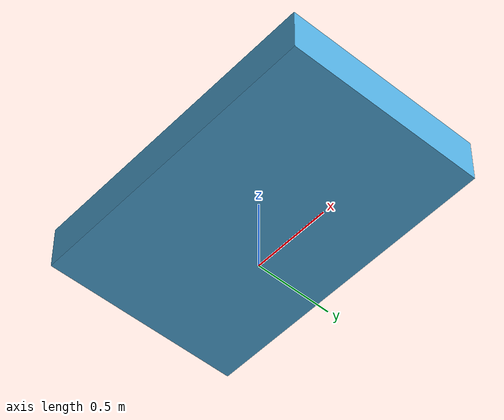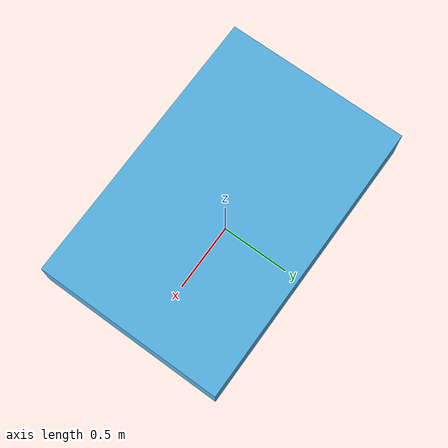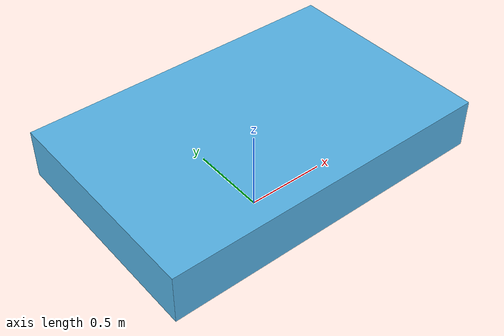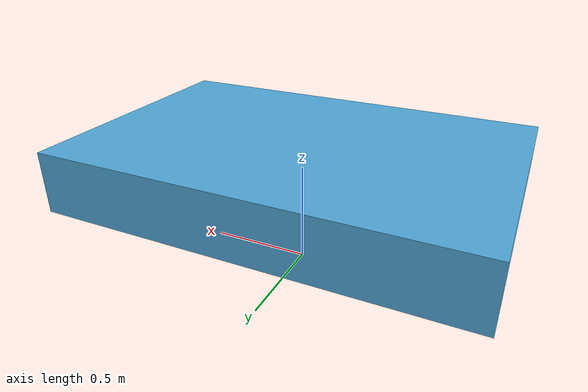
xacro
<?xml version='1.0'?>
<robot name="simple_model" xmlns:xacro="http://ros.org/wiki/xacro">

  <link name="world"/>

  <link name='CarBody'>
    <inertial>
      <origin xyz="0 0 0.5" rpy="0 0 0"/>
      <mass value="1"/>
      <inertia
        ixx="0.166667" ixy="0.0" ixz="0.0"
        iyy="0.166667" iyz="0.0"
        izz="0.166667"/>
    </inertial>

    <visual>
      <origin rpy="0 0 0" xyz = "0 0 0.5"/>
      <geometry>
        <box size="2.0 1.3 0.3"/>
      </geometry>
    </visual>

    <collision>
      <origin xyz="0 0 0.5" rpy="0 0 0"/>
      <geometry>
        <box size="2.0 1.3 0.3"/>
      </geometry>
    </collision>
  </link>

  <joint name="joint_0" type="fixed">
    <parent link="world"/>
    <child link="CarBody"/>
  </joint>

</robot>
